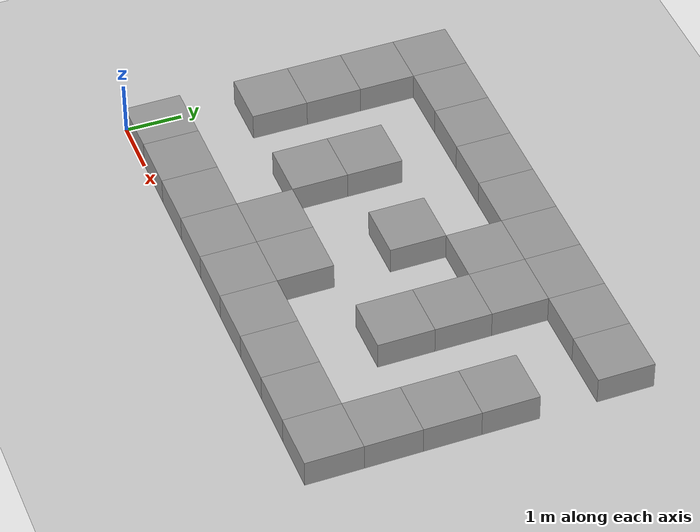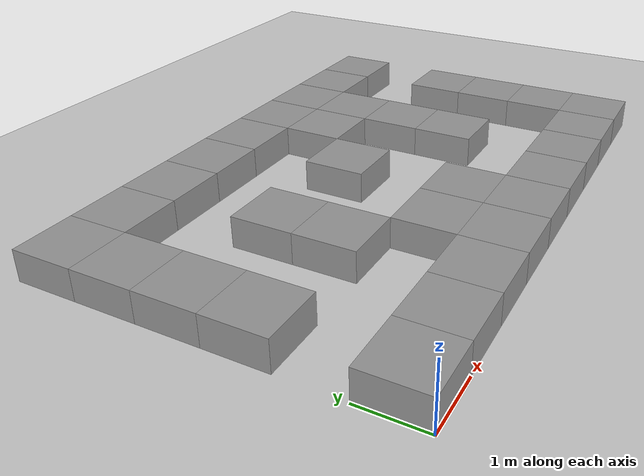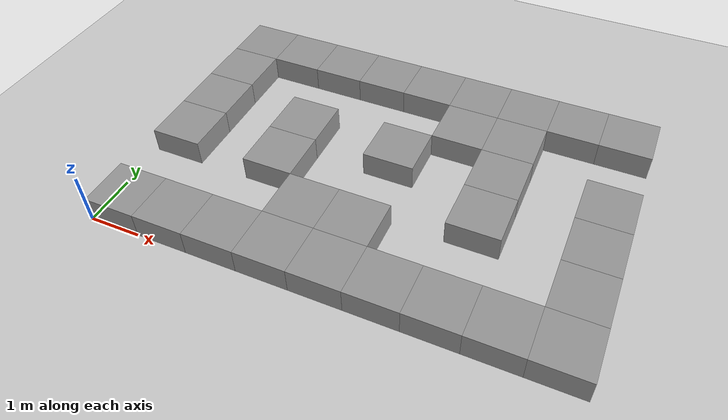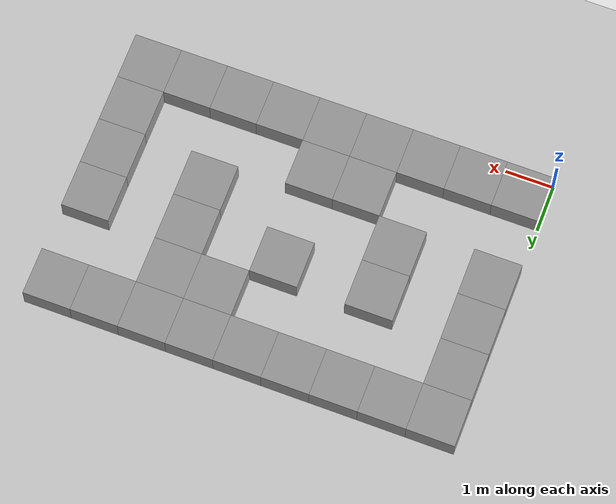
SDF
<?xml version="1.0"?>
<sdf version="1.9">
  <world name="maze_world">
    <scene>
      <shadows>true</shadows>
      <ambient>0.4 0.4 0.4 1.0</ambient>
      <background>0.7 0.7 0.7 1.0</background>
      <grid>false</grid>
    </scene>

    <gui fullscreen="0">
      <camera name="user_camera">
        <pose>3.5 3.0 10.0 0 -1.5707 0</pose> <!-- Top-down view of the maze -->
        <view_controller>orbit</view_controller>
        <projection_type>perspective</projection_type>
      </camera>
    </gui>

    <physics name="default_physics" type="ignored">
      <ode>
        <solver>
          <type>world</type>
          <min_step_size>0.0001</min_step_size>
          <iters>50</iters>
          <precon_iters>0</precon_iters>
          <sor>1.3</sor>
          <use_dynamic_moi_rescaling>true</use_dynamic_moi_rescaling>
        </solver>
        <constraints>
          <cfm>0.00001</cfm>
          <erp>0.2</erp>
          <contact_surface_layer>0.001</contact_surface_layer>
          <contact_max_correcting_vel>100.0</contact_max_correcting_vel>
        </constraints>
      </ode>
      <max_step_size>0.001</max_step_size>
      <real_time_factor>1.0</real_time_factor>
      <real_time_update_rate>1000</real_time_update_rate>
    </physics>

    <light type="directional" name="sun">
      <cast_shadows>true</cast_shadows>
      <pose>0 0 10 0 0 0</pose>
      <diffuse>0.8 0.8 0.8 1</diffuse>
      <specular>0.2 0.2 0.2 1</specular>
      <attenuation>
        <range>1000</range>
        <constant>0.8</constant>
        <linear>0.01</linear>
        <quadratic>0.001</quadratic>
      </attenuation>
      <direction>-0.5 0.1 -0.9</direction>
    </light>

    <model name="ground_plane">
      <static>true</static>
      <link name="link">
        <collision name="collision">
          <geometry>
            <plane><normal>0 0 1</normal><size>100 100</size></plane>
          </geometry>
          <surface>
            <friction><ode><mu>1.0</mu><mu2>1.0</mu2></ode></friction>
          </surface>
        </collision>
        <visual name="visual">
          <geometry>
            <plane><normal>0 0 1</normal><size>100 100</size></plane>
          </geometry>
          <material>
            <ambient>0.8 0.8 0.8 1</ambient>
            <diffuse>0.8 0.8 0.8 1</diffuse>
            <specular>0.8 0.8 0.8 1</specular>
          </material>
        </visual>
      </link>
    </model>

    <!-- Row 0 MAZEs -->
    <model name="MAZE_0_0"><static>true</static><pose>0.5 5.5 0.25 0 0 0</pose><link name="link"><collision name="collision"><geometry><box><size>1 1 0.5</size></box></geometry><surface><friction><ode><mu>0.1</mu><mu2>0.1</mu2></ode></friction><contact><ode><kp>1e+6</kp><kd>1</kd></ode></contact></surface></collision><visual name="visual"><geometry><box><size>1 1 0.5</size></box></geometry><material><ambient>0.6 0.6 0.6 1</ambient><diffuse>0.6 0.6 0.6 1</diffuse><specular>0.1 0.1 0.1 1</specular></material></visual></link></model>
    <model name="MAZE_0_1"><static>true</static><pose>1.5 5.5 0.25 0 0 0</pose><link name="link"><collision name="collision"><geometry><box><size>1 1 0.5</size></box></geometry><surface><friction><ode><mu>0.1</mu><mu2>0.1</mu2></ode></friction><contact><ode><kp>1e+6</kp><kd>1</kd></ode></contact></surface></collision><visual name="visual"><geometry><box><size>1 1 0.5</size></box></geometry><material><ambient>0.6 0.6 0.6 1</ambient><diffuse>0.6 0.6 0.6 1</diffuse><specular>0.1 0.1 0.1 1</specular></material></visual></link></model>
    <model name="MAZE_0_2"><static>true</static><pose>2.5 5.5 0.25 0 0 0</pose><link name="link"><collision name="collision"><geometry><box><size>1 1 0.5</size></box></geometry><surface><friction><ode><mu>0.1</mu><mu2>0.1</mu2></ode></friction><contact><ode><kp>1e+6</kp><kd>1</kd></ode></contact></surface></collision><visual name="visual"><geometry><box><size>1 1 0.5</size></box></geometry><material><ambient>0.6 0.6 0.6 1</ambient><diffuse>0.6 0.6 0.6 1</diffuse><specular>0.1 0.1 0.1 1</specular></material></visual></link></model>
    <model name="MAZE_0_3"><static>true</static><pose>3.5 5.5 0.25 0 0 0</pose><link name="link"><collision name="collision"><geometry><box><size>1 1 0.5</size></box></geometry><surface><friction><ode><mu>0.1</mu><mu2>0.1</mu2></ode></friction><contact><ode><kp>1e+6</kp><kd>1</kd></ode></contact></surface></collision><visual name="visual"><geometry><box><size>1 1 0.5</size></box></geometry><material><ambient>0.6 0.6 0.6 1</ambient><diffuse>0.6 0.6 0.6 1</diffuse><specular>0.1 0.1 0.1 1</specular></material></visual></link></model>
    <model name="MAZE_0_4"><static>true</static><pose>4.5 5.5 0.25 0 0 0</pose><link name="link"><collision name="collision"><geometry><box><size>1 1 0.5</size></box></geometry><surface><friction><ode><mu>0.1</mu><mu2>0.1</mu2></ode></friction><contact><ode><kp>1e+6</kp><kd>1</kd></ode></contact></surface></collision><visual name="visual"><geometry><box><size>1 1 0.5</size></box></geometry><material><ambient>0.6 0.6 0.6 1</ambient><diffuse>0.6 0.6 0.6 1</diffuse><specular>0.1 0.1 0.1 1</specular></material></visual></link></model>
    <model name="MAZE_0_5"><static>true</static><pose>5.5 5.5 0.25 0 0 0</pose><link name="link"><collision name="collision"><geometry><box><size>1 1 0.5</size></box></geometry><surface><friction><ode><mu>0.1</mu><mu2>0.1</mu2></ode></friction><contact><ode><kp>1e+6</kp><kd>1</kd></ode></contact></surface></collision><visual name="visual"><geometry><box><size>1 1 0.5</size></box></geometry><material><ambient>0.6 0.6 0.6 1</ambient><diffuse>0.6 0.6 0.6 1</diffuse><specular>0.1 0.1 0.1 1</specular></material></visual></link></model>
    <model name="MAZE_0_6"><static>true</static><pose>6.5 5.5 0.25 0 0 0</pose><link name="link"><collision name="collision"><geometry><box><size>1 1 0.5</size></box></geometry><surface><friction><ode><mu>0.1</mu><mu2>0.1</mu2></ode></friction><contact><ode><kp>1e+6</kp><kd>1</kd></ode></contact></surface></collision><visual name="visual"><geometry><box><size>1 1 0.5</size></box></geometry><material><ambient>0.6 0.6 0.6 1</ambient><diffuse>0.6 0.6 0.6 1</diffuse><specular>0.1 0.1 0.1 1</specular></material></visual></link></model>
    <model name="MAZE_0_7"><static>true</static><pose>7.5 5.5 0.25 0 0 0</pose><link name="link"><collision name="collision"><geometry><box><size>1 1 0.5</size></box></geometry><surface><friction><ode><mu>0.1</mu><mu2>0.1</mu2></ode></friction><contact><ode><kp>1e+6</kp><kd>1</kd></ode></contact></surface></collision><visual name="visual"><geometry><box><size>1 1 0.5</size></box></geometry><material><ambient>0.6 0.6 0.6 1</ambient><diffuse>0.6 0.6 0.6 1</diffuse><specular>0.1 0.1 0.1 1</specular></material></visual></link></model>
    <model name="MAZE_0_8"><static>true</static><pose>8.5 5.5 0.25 0 0 0</pose><link name="link"><collision name="collision"><geometry><box><size>1 1 0.5</size></box></geometry><surface><friction><ode><mu>0.1</mu><mu2>0.1</mu2></ode></friction><contact><ode><kp>1e+6</kp><kd>1</kd></ode></contact></surface></collision><visual name="visual"><geometry><box><size>1 1 0.5</size></box></geometry><material><ambient>0.6 0.6 0.6 1</ambient><diffuse>0.6 0.6 0.6 1</diffuse><specular>0.1 0.1 0.1 1</specular></material></visual></link></model>

    <!-- Row 1 MAZEs (WSPPTWW) -->
    <model name="MAZE_1_0"><static>true</static><pose>0.5 4.5 0.25 0 0 0</pose><link name="link"><collision name="collision"><geometry><box><size>1 1 0.5</size></box></geometry><surface><friction><ode><mu>0.1</mu><mu2>0.1</mu2></ode></friction><contact><ode><kp>1e+6</kp><kd>1</kd></ode></contact></surface></collision><visual name="visual"><geometry><box><size>1 1 0.5</size></box></geometry><material><ambient>0.6 0.6 0.6 1</ambient><diffuse>0.6 0.6 0.6 1</diffuse><specular>0.1 0.1 0.1 1</specular></material></visual></link></model>
    <model name="MAZE_1_5"><static>true</static><pose>5.5 4.5 0.25 0 0 0</pose><link name="link"><collision name="collision"><geometry><box><size>1 1 0.5</size></box></geometry><surface><friction><ode><mu>0.1</mu><mu2>0.1</mu2></ode></friction><contact><ode><kp>1e+6</kp><kd>1</kd></ode></contact></surface></collision><visual name="visual"><geometry><box><size>1 1 0.5</size></box></geometry><material><ambient>0.6 0.6 0.6 1</ambient><diffuse>0.6 0.6 0.6 1</diffuse><specular>0.1 0.1 0.1 1</specular></material></visual></link></model>
    <model name="MAZE_1_6"><static>true</static><pose>6.5 4.5 0.25 0 0 0</pose><link name="link"><collision name="collision"><geometry><box><size>1 1 0.5</size></box></geometry><surface><friction><ode><mu>0.1</mu><mu2>0.1</mu2></ode></friction><contact><ode><kp>1e+6</kp><kd>1</kd></ode></contact></surface></collision><visual name="visual"><geometry><box><size>1 1 0.5</size></box></geometry><material><ambient>0.6 0.6 0.6 1</ambient><diffuse>0.6 0.6 0.6 1</diffuse><specular>0.1 0.1 0.1 1</specular></material></visual></link></model>

    <!-- Row 2 MAZEs (WPWWW W) -->
    <model name="MAZE_2_0"><static>true</static><pose>0.5 3.5 0.25 0 0 0</pose><link name="link"><collision name="collision"><geometry><box><size>1 1 0.5</size></box></geometry><surface><friction><ode><mu>0.1</mu><mu2>0.1</mu2></ode></friction><contact><ode><kp>1e+6</kp><kd>1</kd></ode></contact></surface></collision><visual name="visual"><geometry><box><size>1 1 0.5</size></box></geometry><material><ambient>0.6 0.6 0.6 1</ambient><diffuse>0.6 0.6 0.6 1</diffuse><specular>0.1 0.1 0.1 1</specular></material></visual></link></model>
    <model name="MAZE_2_2"><static>true</static><pose>2.5 3.5 0.25 0 0 0</pose><link name="link"><collision name="collision"><geometry><box><size>1 1 0.5</size></box></geometry><surface><friction><ode><mu>0.1</mu><mu2>0.1</mu2></ode></friction><contact><ode><kp>1e+6</kp><kd>1</kd></ode></contact></surface></collision><visual name="visual"><geometry><box><size>1 1 0.5</size></box></geometry><material><ambient>0.6 0.6 0.6 1</ambient><diffuse>0.6 0.6 0.6 1</diffuse><specular>0.1 0.1 0.1 1</specular></material></visual></link></model>
    <model name="MAZE_2_4"><static>true</static><pose>4.5 3.5 0.25 0 0 0</pose><link name="link"><collision name="collision"><geometry><box><size>1 1 0.5</size></box></geometry><surface><friction><ode><mu>0.1</mu><mu2>0.1</mu2></ode></friction><contact><ode><kp>1e+6</kp><kd>1</kd></ode></contact></surface></collision><visual name="visual"><geometry><box><size>1 1 0.5</size></box></geometry><material><ambient>0.6 0.6 0.6 1</ambient><diffuse>0.6 0.6 0.6 1</diffuse><specular>0.1 0.1 0.1 1</specular></material></visual></link></model>
    <model name="MAZE_2_6"><static>true</static><pose>6.5 3.5 0.25 0 0 0</pose><link name="link"><collision name="collision"><geometry><box><size>1 1 0.5</size></box></geometry><surface><friction><ode><mu>0.1</mu><mu2>0.1</mu2></ode></friction><contact><ode><kp>1e+6</kp><kd>1</kd></ode></contact></surface></collision><visual name="visual"><geometry><box><size>1 1 0.5</size></box></geometry><material><ambient>0.6 0.6 0.6 1</ambient><diffuse>0.6 0.6 0.6 1</diffuse><specular>0.1 0.1 0.1 1</specular></material></visual></link></model>
    <model name="MAZE_2_8"><static>true</static><pose>8.5 3.5 0.25 0 0 0</pose><link name="link"><collision name="collision"><geometry><box><size>1 1 0.5</size></box></geometry><surface><friction><ode><mu>0.1</mu><mu2>0.1</mu2></ode></friction><contact><ode><kp>1e+6</kp><kd>1</kd></ode></contact></surface></collision><visual name="visual"><geometry><box><size>1 1 0.5</size></box></geometry><material><ambient>0.6 0.6 0.6 1</ambient><diffuse>0.6 0.6 0.6 1</diffuse><specular>0.1 0.1 0.1 1</specular></material></visual></link></model>

    <!-- Row 3 MAZEs & Obstacle (WPOWW W) -->
    <model name="MAZE_3_0"><static>true</static><pose>0.5 2.5 0.25 0 0 0</pose><link name="link"><collision name="collision"><geometry><box><size>1 1 0.5</size></box></geometry><surface><friction><ode><mu>0.1</mu><mu2>0.1</mu2></ode></friction><contact><ode><kp>1e+6</kp><kd>1</kd></ode></contact></surface></collision><visual name="visual"><geometry><box><size>1 1 0.5</size></box></geometry><material><ambient>0.6 0.6 0.6 1</ambient><diffuse>0.6 0.6 0.6 1</diffuse><specular>0.1 0.1 0.1 1</specular></material></visual></link></model>
    <!-- Obstacle at r=3, c=2. x=2.5, y=2.5 -->
    <model name="MAZE_3_2"><static>true</static><pose>2.5 2.5 0.25 0 0 0</pose><link name="link"><collision name="collision"><geometry><box><size>1 1 0.5</size></box></geometry><surface><friction><ode><mu>0.1</mu><mu2>0.1</mu2></ode></friction><contact><ode><kp>1e+6</kp><kd>1</kd></ode></contact></surface></collision><visual name="visual"><geometry><box><size>1 1 0.5</size></box></geometry><material><ambient>0.6 0.6 0.6 1</ambient><diffuse>0.6 0.6 0.6 1</diffuse><specular>0.1 0.1 0.1 1</specular></material></visual></link></model>
    <model name="MAZE_3_6"><static>true</static><pose>6.5 2.5 0.25 0 0 0</pose><link name="link"><collision name="collision"><geometry><box><size>1 1 0.5</size></box></geometry><surface><friction><ode><mu>0.1</mu><mu2>0.1</mu2></ode></friction><contact><ode><kp>1e+6</kp><kd>1</kd></ode></contact></surface></collision><visual name="visual"><geometry><box><size>1 1 0.5</size></box></geometry><material><ambient>0.6 0.6 0.6 1</ambient><diffuse>0.6 0.6 0.6 1</diffuse><specular>0.1 0.1 0.1 1</specular></material></visual></link></model>
    <model name="MAZE_3_8"><static>true</static><pose>8.5 2.5 0.25 0 0 0</pose><link name="link"><collision name="collision"><geometry><box><size>1 1 0.5</size></box></geometry><surface><friction><ode><mu>0.1</mu><mu2>0.1</mu2></ode></friction><contact><ode><kp>1e+6</kp><kd>1</kd></ode></contact></surface></collision><visual name="visual"><geometry><box><size>1 1 0.5</size></box></geometry><material><ambient>0.6 0.6 0.6 1</ambient><diffuse>0.6 0.6 0.6 1</diffuse><specular>0.1 0.1 0.1 1</specular></material></visual></link></model>

    <!-- Row 4 MAZEs (WPWWW W) -->
    <model name="MAZE_4_3"><static>true</static><pose>3.5 1.5 0.25 0 0 0</pose><link name="link"><collision name="collision"><geometry><box><size>1 1 0.5</size></box></geometry><surface><friction><ode><mu>0.1</mu><mu2>0.1</mu2></ode></friction><contact><ode><kp>1e+6</kp><kd>1</kd></ode></contact></surface></collision><visual name="visual"><geometry><box><size>1 1 0.5</size></box></geometry><material><ambient>0.6 0.6 0.6 1</ambient><diffuse>0.6 0.6 0.6 1</diffuse><specular>0.1 0.1 0.1 1</specular></material></visual></link></model>
    <model name="MAZE_4_4"><static>true</static><pose>4.5 1.5 0.25 0 0 0</pose><link name="link"><collision name="collision"><geometry><box><size>1 1 0.5</size></box></geometry><surface><friction><ode><mu>0.1</mu><mu2>0.1</mu2></ode></friction><contact><ode><kp>1e+6</kp><kd>1</kd></ode></contact></surface></collision><visual name="visual"><geometry><box><size>1 1 0.5</size></box></geometry><material><ambient>0.6 0.6 0.6 1</ambient><diffuse>0.6 0.6 0.6 1</diffuse><specular>0.1 0.1 0.1 1</specular></material></visual></link></model>
    <model name="MAZE_4_8"><static>true</static><pose>8.5 1.5 0.25 0 0 0</pose><link name="link"><collision name="collision"><geometry><box><size>1 1 0.5</size></box></geometry><surface><friction><ode><mu>0.1</mu><mu2>0.1</mu2></ode></friction><contact><ode><kp>1e+6</kp><kd>1</kd></ode></contact></surface></collision><visual name="visual"><geometry><box><size>1 1 0.5</size></box></geometry><material><ambient>0.6 0.6 0.6 1</ambient><diffuse>0.6 0.6 0.6 1</diffuse><specular>0.1 0.1 0.1 1</specular></material></visual></link></model>

    <!-- Row 5 MAZEs (WWWWWWW) -->
    <model name="MAZE_5_0"><static>true</static><pose>0.5 0.5 0.25 0 0 0</pose><link name="link"><collision name="collision"><geometry><box><size>1 1 0.5</size></box></geometry><surface><friction><ode><mu>0.1</mu><mu2>0.1</mu2></ode></friction><contact><ode><kp>1e+6</kp><kd>1</kd></ode></contact></surface></collision><visual name="visual"><geometry><box><size>1 1 0.5</size></box></geometry><material><ambient>0.6 0.6 0.6 1</ambient><diffuse>0.6 0.6 0.6 1</diffuse><specular>0.1 0.1 0.1 1</specular></material></visual></link></model>
    <model name="MAZE_5_1"><static>true</static><pose>1.5 0.5 0.25 0 0 0</pose><link name="link"><collision name="collision"><geometry><box><size>1 1 0.5</size></box></geometry><surface><friction><ode><mu>0.1</mu><mu2>0.1</mu2></ode></friction><contact><ode><kp>1e+6</kp><kd>1</kd></ode></contact></surface></collision><visual name="visual"><geometry><box><size>1 1 0.5</size></box></geometry><material><ambient>0.6 0.6 0.6 1</ambient><diffuse>0.6 0.6 0.6 1</diffuse><specular>0.1 0.1 0.1 1</specular></material></visual></link></model>
    <model name="MAZE_5_2"><static>true</static><pose>2.5 0.5 0.25 0 0 0</pose><link name="link"><collision name="collision"><geometry><box><size>1 1 0.5</size></box></geometry><surface><friction><ode><mu>0.1</mu><mu2>0.1</mu2></ode></friction><contact><ode><kp>1e+6</kp><kd>1</kd></ode></contact></surface></collision><visual name="visual"><geometry><box><size>1 1 0.5</size></box></geometry><material><ambient>0.6 0.6 0.6 1</ambient><diffuse>0.6 0.6 0.6 1</diffuse><specular>0.1 0.1 0.1 1</specular></material></visual></link></model>
    <model name="MAZE_5_3"><static>true</static><pose>3.5 0.5 0.25 0 0 0</pose><link name="link"><collision name="collision"><geometry><box><size>1 1 0.5</size></box></geometry><surface><friction><ode><mu>0.1</mu><mu2>0.1</mu2></ode></friction><contact><ode><kp>1e+6</kp><kd>1</kd></ode></contact></surface></collision><visual name="visual"><geometry><box><size>1 1 0.5</size></box></geometry><material><ambient>0.6 0.6 0.6 1</ambient><diffuse>0.6 0.6 0.6 1</diffuse><specular>0.1 0.1 0.1 1</specular></material></visual></link></model>
    <model name="MAZE_5_4"><static>true</static><pose>4.5 0.5 0.25 0 0 0</pose><link name="link"><collision name="collision"><geometry><box><size>1 1 0.5</size></box></geometry><surface><friction><ode><mu>0.1</mu><mu2>0.1</mu2></ode></friction><contact><ode><kp>1e+6</kp><kd>1</kd></ode></contact></surface></collision><visual name="visual"><geometry><box><size>1 1 0.5</size></box></geometry><material><ambient>0.6 0.6 0.6 1</ambient><diffuse>0.6 0.6 0.6 1</diffuse><specular>0.1 0.1 0.1 1</specular></material></visual></link></model>
    <model name="MAZE_5_5"><static>true</static><pose>5.5 0.5 0.25 0 0 0</pose><link name="link"><collision name="collision"><geometry><box><size>1 1 0.5</size></box></geometry><surface><friction><ode><mu>0.1</mu><mu2>0.1</mu2></ode></friction><contact><ode><kp>1e+6</kp><kd>1</kd></ode></contact></surface></collision><visual name="visual"><geometry><box><size>1 1 0.5</size></box></geometry><material><ambient>0.6 0.6 0.6 1</ambient><diffuse>0.6 0.6 0.6 1</diffuse><specular>0.1 0.1 0.1 1</specular></material></visual></link></model>
    <model name="MAZE_5_6"><static>true</static><pose>6.5 0.5 0.25 0 0 0</pose><link name="link"><collision name="collision"><geometry><box><size>1 1 0.5</size></box></geometry><surface><friction><ode><mu>0.1</mu><mu2>0.1</mu2></ode></friction><contact><ode><kp>1e+6</kp><kd>1</kd></ode></contact></surface></collision><visual name="visual"><geometry><box><size>1 1 0.5</size></box></geometry><material><ambient>0.6 0.6 0.6 1</ambient><diffuse>0.6 0.6 0.6 1</diffuse><specular>0.1 0.1 0.1 1</specular></material></visual></link></model>
    <model name="MAZE_5_7"><static>true</static><pose>7.5 0.5 0.25 0 0 0</pose><link name="link"><collision name="collision"><geometry><box><size>1 1 0.5</size></box></geometry><surface><friction><ode><mu>0.1</mu><mu2>0.1</mu2></ode></friction><contact><ode><kp>1e+6</kp><kd>1</kd></ode></contact></surface></collision><visual name="visual"><geometry><box><size>1 1 0.5</size></box></geometry><material><ambient>0.6 0.6 0.6 1</ambient><diffuse>0.6 0.6 0.6 1</diffuse><specular>0.1 0.1 0.1 1</specular></material></visual></link></model>
    <model name="MAZE_5_8"><static>true</static><pose>8.5 0.5 0.25 0 0 0</pose><link name="link"><collision name="collision"><geometry><box><size>1 1 0.5</size></box></geometry><surface><friction><ode><mu>0.1</mu><mu2>0.1</mu2></ode></friction><contact><ode><kp>1e+6</kp><kd>1</kd></ode></contact></surface></collision><visual name="visual"><geometry><box><size>1 1 0.5</size></box></geometry><material><ambient>0.6 0.6 0.6 1</ambient><diffuse>0.6 0.6 0.6 1</diffuse><specular>0.1 0.1 0.1 1</specular></material></visual></link></model>

  </world>
</sdf>
